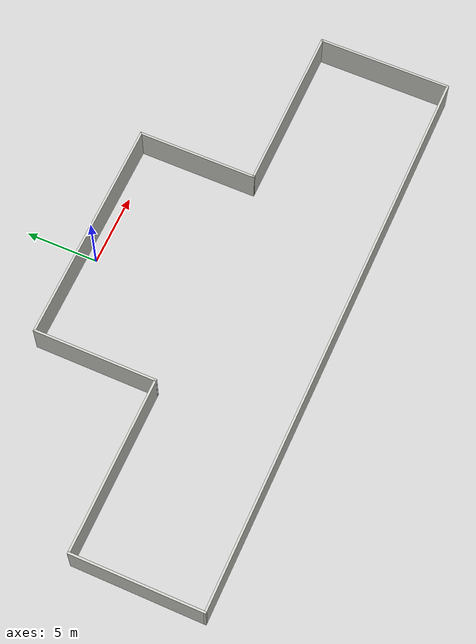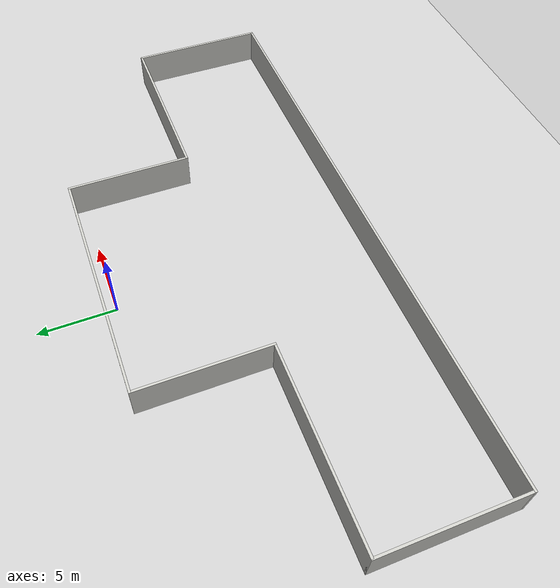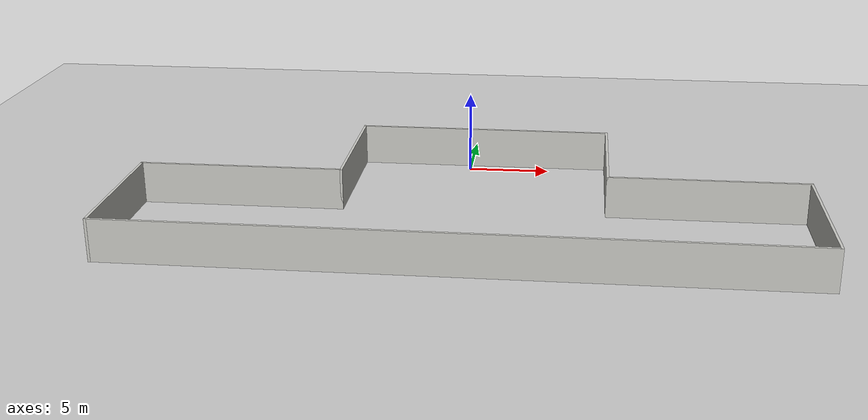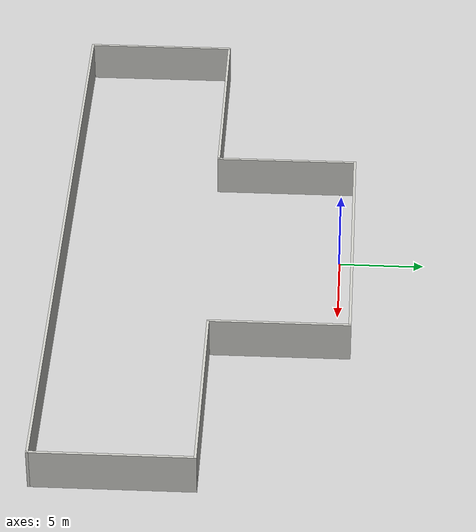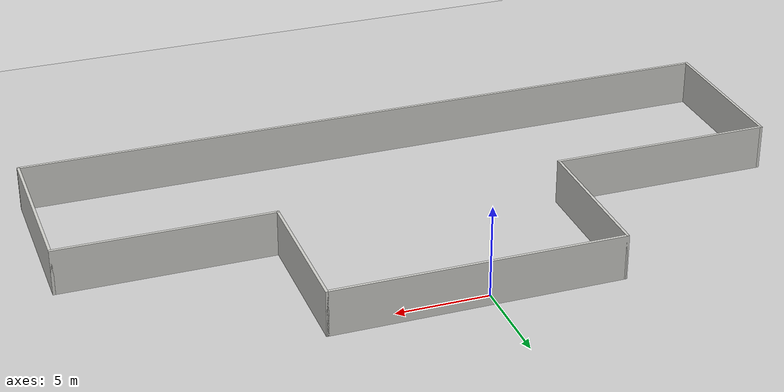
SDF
<sdf version="1.6">
 <world name="default">
  <light name="sun" type="directional">
   <pose>0 0 10 0 -0 0</pose>
   <diffuse>0.8 0.8 0.8 1</diffuse>
   <specular>0.1 0.1 0.1 1</specular>
   <attenuation>
    <range>1000</range>
    <constant>0.9</constant>
    <linear>0.01</linear>
    <quadratic>0.001</quadratic>
   </attenuation>
   <direction>-0.5 0.5 -1</direction>
  </light>
  <physics name="default_physics" default="0" type="ode">
   <max_step_size>0.01</max_step_size>
   <real_time_factor>1</real_time_factor>
   <real_time_update_rate>100</real_time_update_rate>
  </physics>
  <gravity>0 0 -9.8</gravity>
  <magnetic_field>6e-06 2.3e-05 -4.2e-05</magnetic_field>
  <atmosphere type="adiabatic"/>
  <scene><ambient>0.4 0.4 0.4 1</ambient><background>0.7 0.7 0.7 1</background><shadows>1</shadows></scene>
  <spherical_coordinates>
   <surface_model>EARTH_WGS84</surface_model>
   <latitude_deg>0</latitude_deg>
   <longitude_deg>0</longitude_deg>
   <elevation>0</elevation>
   <heading_deg>0</heading_deg>
  </spherical_coordinates>
  <model name="my_ground_plane">
   <static>1</static>
   <link name="link">
    <collision name="collision">
     <geometry><plane><normal>0 0 1</normal><size>100 100</size></plane></geometry>
     <surface><friction><ode><mu>100</mu><mu2>50</mu2></ode></friction></surface>
    </collision>
    <visual name="visual">
     <cast_shadows>0</cast_shadows>
     <geometry><plane><normal>0 0 1</normal><size>100 100</size></plane></geometry>
     <material>
      <script>
       <uri>model://my_ground_plane/materials/scripts</uri>
       <uri>model://my_ground_plane/materials/textures/</uri>
       <name>MyGroundPlane/Image</name>
      </script>
     </material>
    </visual>
   </link>
   <pose>1.11279 -17.0923 0 0 -0 0</pose>
  </model>
  <model name="my_green_walls">
   <pose>0.609037 -7.86533 0 0 -0 0</pose>
   <link name="Wall_10">
    <collision name="Wall_10_Collision">
     <geometry><box><size>39.5 0.15 2.5</size></box></geometry>
     <pose>0 0 1.25 0 -0 0</pose>
    </collision>
    <visual name="Wall_10_Visual">
     <pose>0 0 1.25 0 -0 0</pose>
     <geometry><box><size>39.5 0.15 2.5</size></box></geometry>
     <material>
      <script><uri>file://media/materials/scripts/gazebo.material</uri><name>Gazebo/CeilingTiled</name></script>
      <ambient>0.435294 0.796078 0.67451 1</ambient>
     </material>
    </visual>
    <pose>-1e-06 -8.6 0 0 -0 3.14159</pose>
   </link>
   <link name="Wall_28">
    <collision name="Wall_28_Collision">
     <geometry><box><size>9 0.15 2.5</size></box></geometry>
     <pose>0 0 1.25 0 -0 0</pose>
    </collision>
    <visual name="Wall_28_Visual">
     <pose>0 0 1.25 0 -0 0</pose>
     <geometry><box><size>9 0.15 2.5</size></box></geometry>
     <material>
      <script><uri>file://media/materials/scripts/gazebo.material</uri><name>Gazebo/CeilingTiled</name></script>
      <ambient>0.435294 0.796078 0.67451 1</ambient>
     </material>
    </visual>
    <pose>-19.675 -4.175 0 0 -0 1.5708</pose>
   </link>
   <link name="Wall_29">
    <collision name="Wall_29_Collision">
     <geometry><box><size>12.25 0.15 2.5</size></box></geometry>
     <pose>0 0 1.25 0 -0 0</pose>
    </collision>
    <visual name="Wall_29_Visual">
     <pose>0 0 1.25 0 -0 0</pose>
     <geometry><box><size>12.25 0.15 2.5</size></box></geometry>
     <material>
      <script><uri>file://media/materials/scripts/gazebo.material</uri><name>Gazebo/CeilingTiled</name></script>
      <ambient>0.435294 0.796078 0.67451 1</ambient>
     </material>
    </visual>
    <pose>-13.625 0.25 0 0 -0 0</pose>
   </link>
   <link name="Wall_30">
    <collision name="Wall_30_Collision">
     <geometry><box><size>8.5 0.15 2.5</size></box></geometry>
     <pose>0 0 1.25 0 -0 0</pose>
    </collision>
    <visual name="Wall_30_Visual">
     <pose>0 0 1.25 0 -0 0</pose>
     <geometry><box><size>8.5 0.15 2.5</size></box></geometry>
     <material>
      <script><uri>file://media/materials/scripts/gazebo.material</uri><name>Gazebo/CeilingTiled</name></script>
      <ambient>0.435294 0.796078 0.67451 1</ambient>
     </material>
    </visual>
    <pose>-7.575 4.425 0 0 -0 1.5708</pose>
   </link>
   <link name="Wall_32">
    <collision name="Wall_32_Collision">
     <geometry><box><size>15.75 0.15 2.5</size></box></geometry>
     <pose>0 0 1.25 0 -0 0</pose>
    </collision>
    <visual name="Wall_32_Visual">
     <pose>0 0 1.25 0 -0 0</pose>
     <geometry><box><size>15.75 0.15 2.5</size></box></geometry>
     <material>
      <script><uri>file://media/materials/scripts/gazebo.material</uri><name>Gazebo/CeilingTiled</name></script>
      <ambient>0.435294 0.796078 0.67451 1</ambient>
     </material>
    </visual>
    <pose>0.224999 8.6 0 0 -0 0</pose>
   </link>
   <link name="Wall_7">
    <collision name="Wall_7_Collision">
     <geometry><box><size>8.25 0.15 2.5</size></box></geometry>
     <pose>0 0 1.25 0 -0 0</pose>
    </collision>
    <visual name="Wall_7_Visual">
     <pose>0 0 1.25 0 -0 0</pose>
     <geometry><box><size>8.25 0.15 2.5</size></box></geometry>
     <material>
      <script><uri>file://media/materials/scripts/gazebo.material</uri><name>Gazebo/CeilingTiled</name></script>
      <ambient>0.435294 0.796078 0.67451 1</ambient>
     </material>
    </visual>
    <pose>8.075 4.55 0 0 0 -1.5708</pose>
   </link>
   <link name="Wall_8">
    <collision name="Wall_8_Collision">
     <geometry><box><size>11.75 0.15 2.5</size></box></geometry>
     <pose>0 0 1.25 0 -0 0</pose>
    </collision>
    <visual name="Wall_8_Visual">
     <pose>0 0 1.25 0 -0 0</pose>
     <geometry><box><size>11.75 0.15 2.5</size></box></geometry>
     <material>
      <script><uri>file://media/materials/scripts/gazebo.material</uri><name>Gazebo/CeilingTiled</name></script>
      <ambient>0.435294 0.796078 0.67451 1</ambient>
     </material>
    </visual>
    <pose>13.875 0.5 0 0 -0 0</pose>
   </link>
   <link name="Wall_9">
    <collision name="Wall_9_Collision">
     <geometry><box><size>9.25 0.15 2.5</size></box></geometry>
     <pose>0 0 1.25 0 -0 0</pose>
    </collision>
    <visual name="Wall_9_Visual">
     <pose>0 0 1.25 0 -0 0</pose>
     <geometry><box><size>9.25 0.15 2.5</size></box></geometry>
     <material>
      <script><uri>file://media/materials/scripts/gazebo.material</uri><name>Gazebo/CeilingTiled</name></script>
      <ambient>0.435294 0.796078 0.67451 1</ambient>
     </material>
    </visual>
    <pose>19.675 -4.05 0 0 0 -1.5708</pose>
   </link>
   <static>1</static>
  </model>
 </world>
</sdf>
